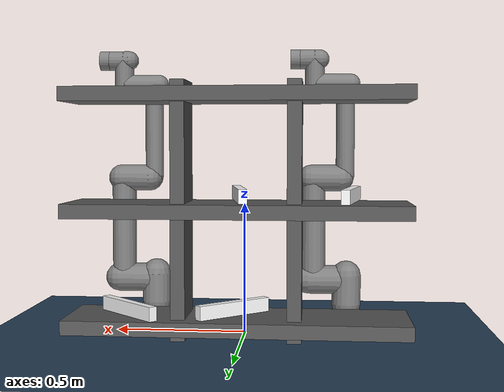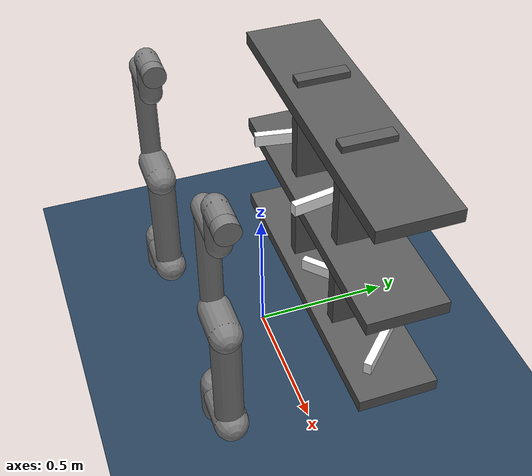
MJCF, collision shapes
<mujoco model="ur5e scene">
  <!--include file="ur5e.xml"/-->
  <include file="ur5e_two.xml"/>
  <include file="objs_four.xml"/>

  <statistic center="0.3 0 0.4" extent="0.8"/>

  <visual>
    <headlight diffuse="0.6 0.6 0.6" ambient="0.1 0.1 0.1" specular="0 0 0"/>
    <rgba haze="0.15 0.25 0.35 1"/>
    <global azimuth="120" elevation="-20"/>
  </visual>

  <asset>
    <texture type="skybox" builtin="gradient" rgb1="0.3 0.5 0.7" rgb2="0 0 0" width="512" height="3072"/>
    <texture type="2d" name="groundplane" builtin="checker" mark="edge" rgb1="0.2 0.3 0.4" rgb2="0.1 0.2 0.3"
      markrgb="0.8 0.8 0.8" width="300" height="300"/>
    <material name="groundplane" texture="groundplane" texuniform="true" texrepeat="5 5" reflectance="0.2"/>
    <material name="gray" rgba="0.35 0.35 0.35 0.7"/>
  </asset>

  <worldbody>
    <light pos="0 0 1.5" dir="0 0 -1" directional="true"/>
    <geom name="floor" size="0 0 0.05" type="plane" material="groundplane"/>

    <body name="shelf_base" pos="0.0 0.3 0.1" quat="1 0 0 0">
      <inertial pos="0 0 0" mass="1" diaginertia="0.01 0.01 0.01"/>
       <geom type="box" size="0.6 0.15 0.025" material="gray"/>

      <body name="divider" pos="0.2 0.0 0.4" quat="1 0 0 0">
        <inertial pos="0 0 0" mass="1" diaginertia="0.01 0.01 0.01"/>
        <geom type="box" size="0.025 0.1 0.45" material="gray"/>
      </body>
      <body name="divider2" pos="-0.2 0.0 0.4" quat="1 0 0 0">
        <inertial pos="0 0 0" mass="1" diaginertia="0.01 0.01 0.01"/>
        <geom type="box" size="0.025 0.1 0.45" material="gray"/>
      </body>
      <body name="level1" pos="0.0 0.0 0.4" quat="1 0 0 0">
        <inertial pos="0 0 0" mass="1" diaginertia="0.01 0.01 0.01"/>
        <geom type="box" size="0.6 0.15 0.025" material="gray"/>
      </body>
      <body name="level2" pos="0.0 0.0 0.8" quat="1 0 0 0">
        <inertial pos="0 0 0" mass="1" diaginertia="0.01 0.01 0.01"/>
        <geom type="box" size="0.6 0.15 0.025" material="gray"/>
      </body>
    </body>
  </worldbody>
</mujoco>

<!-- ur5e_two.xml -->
<mujoco model="ur5e">
  <compiler angle="radian" meshdir="ur5e_assets" autolimits="true" />

  <option integrator="implicitfast" />

  <default>
    <default class="ur5e">
      <material specular="0.5" shininess="0.25" />
      <joint axis="0 1 0" range="-6.28319 6.28319" armature="0.1" />
      <general gaintype="fixed" biastype="affine" ctrlrange="-6.2831 6.2831" gainprm="2000" biasprm="0 -2000 -400" forcerange="-150 150" />
      <default class="size3">
        <default class="size3_limited">
          <joint range="-3.1415 3.1415" />
          <general ctrlrange="-3.1415 3.1415" />
        </default>
      </default>
      <default class="size1">
        <general gainprm="500" biasprm="0 -500 -100" forcerange="-28 28" />
      </default>
      <default class="visual">
        <geom type="mesh" contype="0" conaffinity="0" group="2" />
      </default>
      <default class="collision">
        <geom type="capsule" group="3" />
        <default class="eef_collision">
          <geom type="cylinder" />
        </default>
      </default>
      <site size="0.001" rgba="0.5 0.5 0.5 0.3" group="4" />
    </default>
  </default>

  <asset>
    <material class="ur5e" name="black" rgba="0.033 0.033 0.033 1" />
    <material class="ur5e" name="jointgray" rgba="0.278 0.278 0.278 1" />
    <material class="ur5e" name="linkgray" rgba="0.82 0.82 0.82 1" />
    <material class="ur5e" name="urblue" rgba="0.49 0.678 0.8 1" />

    <mesh file="base_0.obj" />
    <mesh file="base_1.obj" />
    <mesh file="shoulder_0.obj" />
    <mesh file="shoulder_1.obj" />
    <mesh file="shoulder_2.obj" />
    <mesh file="upperarm_0.obj" />
    <mesh file="upperarm_1.obj" />
    <mesh file="upperarm_2.obj" />
    <mesh file="upperarm_3.obj" />
    <mesh file="forearm_0.obj" />
    <mesh file="forearm_1.obj" />
    <mesh file="forearm_2.obj" />
    <mesh file="forearm_3.obj" />
    <mesh file="wrist1_0.obj" />
    <mesh file="wrist1_1.obj" />
    <mesh file="wrist1_2.obj" />
    <mesh file="wrist2_0.obj" />
    <mesh file="wrist2_1.obj" />
    <mesh file="wrist2_2.obj" />
    <mesh file="wrist3.obj" />
  </asset>

  <worldbody>
    <light name="spotlight" mode="targetbodycom" target="wrist_2_link" pos="0 -1 2" />
    <body name="base" pos="-0.4 -0.3 0.0" quat="1.0 0.0 0.0 1.0" childclass="ur5e">
      <inertial mass="4.0" pos="0 0 0" diaginertia="0.00443333156 0.00443333156 0.0072" />
      <geom mesh="base_0" material="black" class="visual" />
      <geom mesh="base_1" material="jointgray" class="visual" />
      <body name="shoulder_link" pos="0 0 0.163" quat="0 0 0 1">
        <inertial mass="3.7" pos="0 0 0" diaginertia="0.0102675 0.0102675 0.00666" />
        <joint name="shoulder_pan_joint" class="size3" axis="0 0 1" />
        <geom mesh="shoulder_0" material="urblue" class="visual" />
        <geom mesh="shoulder_1" material="black" class="visual" />
        <geom mesh="shoulder_2" material="jointgray" class="visual" />
        <geom class="collision" size="0.06 0.06" pos="0 0 -0.04" />
        <body name="upper_arm_link" pos="0 0.138 0" quat="1 0 0 0">
          <inertial mass="8.393" pos="0 0 0.2125" diaginertia="0.133886 0.133886 0.0151074" />
          <joint name="shoulder_lift_joint" class="size3" />
          <geom mesh="upperarm_0" material="linkgray" class="visual" />
          <geom mesh="upperarm_1" material="black" class="visual" />
          <geom mesh="upperarm_2" material="jointgray" class="visual" />
          <geom mesh="upperarm_3" material="urblue" class="visual" />
          <geom class="collision" pos="0 -0.04 0" quat="1 1 0 0" size="0.06 0.06" />
          <geom class="collision" size="0.05 0.2" pos="0 0 0.2" />
          <body name="forearm_link" pos="0 -0.131 0.425">
            <inertial mass="2.275" pos="0 0 0.196" diaginertia="0.0311796 0.0311796 0.004095" />
            <joint name="elbow_joint" class="size3_limited" />
            <geom mesh="forearm_0" material="urblue" class="visual" />
            <geom mesh="forearm_1" material="linkgray" class="visual" />
            <geom mesh="forearm_2" material="black" class="visual" />
            <geom mesh="forearm_3" material="jointgray" class="visual" />
            <geom class="collision" pos="0 0.08 0" quat="1 1 0 0" size="0.055 0.06" />
            <geom class="collision" size="0.038 0.19" pos="0 0 0.2" />
            <body name="wrist_1_link" pos="0 0 0.392" quat="1 0 0 0">
              <inertial mass="1.219" pos="0 0.127 0" diaginertia="0.0025599 0.0025599 0.0021942" />
              <joint name="wrist_1_joint" class="size1" />
              <geom mesh="wrist1_0" material="black" class="visual" />
              <geom mesh="wrist1_1" material="urblue" class="visual" />
              <geom mesh="wrist1_2" material="jointgray" class="visual" />
              <geom class="collision" pos="0 0.05 0" quat="1 1 0 0" size="0.04 0.07" />
              <body name="wrist_2_link" pos="0 0.127 0">
                <inertial mass="1.219" pos="0 0 0.1" diaginertia="0.0025599 0.0025599 0.0021942" />
                <joint name="wrist_2_joint" axis="0 0 1" class="size1" />
                <geom mesh="wrist2_0" material="black" class="visual" />
                <geom mesh="wrist2_1" material="urblue" class="visual" />
                <geom mesh="wrist2_2" material="jointgray" class="visual" />
                <geom class="collision" size="0.04 0.06" pos="0 0 0.04" />
                <geom class="collision" pos="0 0.02 0.1" quat="1 1 0 0" size="0.04 0.04" />
                <body name="wrist_3_link" pos="0 0 0.1">
                  <inertial mass="0.1889" pos="0 0.0771683 0" quat="1 0 0 1" diaginertia="0.000132134 9.90863e-05 9.90863e-05" />
                  <joint name="wrist_3_joint" class="size1" />
                  <geom material="linkgray" mesh="wrist3" class="visual" />
                  <geom class="eef_collision" pos="0 0.08 0" quat="1 1 0 0" size="0.04 0.02" />
                  <site name="attachment_site" pos="0 0.1 0" quat="-1 1 0 0" />
                </body>
              </body>
            </body>
          </body>
        </body>
      </body>
    </body>

    <body name="base_1" pos="0.4 -0.3 0.0" quat="1.0 0.0 0.0 1.0" childclass="ur5e">
      <inertial mass="4.0" pos="0 0 0" diaginertia="0.00443333156 0.00443333156 0.0072" />
      <geom mesh="base_0" material="black" class="visual" />
      <geom mesh="base_1" material="jointgray" class="visual" />
      <body name="shoulder_link_1" pos="0 0 0.163" quat="0 0 0 1">
        <inertial mass="3.7" pos="0 0 0" diaginertia="0.0102675 0.0102675 0.00666" />
        <joint name="shoulder_pan_joint_1" class="size3" axis="0 0 1" />
        <geom mesh="shoulder_0" material="urblue" class="visual" />
        <geom mesh="shoulder_1" material="black" class="visual" />
        <geom mesh="shoulder_2" material="jointgray" class="visual" />
        <geom class="collision" size="0.06 0.06" pos="0 0 -0.04" />
        <body name="upper_arm_link_1" pos="0 0.138 0" quat="1 0 0 0">
          <inertial mass="8.393" pos="0 0 0.2125" diaginertia="0.133886 0.133886 0.0151074" />
          <joint name="shoulder_lift_joint_1" class="size3" />
          <geom mesh="upperarm_0" material="linkgray" class="visual" />
          <geom mesh="upperarm_1" material="black" class="visual" />
          <geom mesh="upperarm_2" material="jointgray" class="visual" />
          <geom mesh="upperarm_3" material="urblue" class="visual" />
          <geom class="collision" pos="0 -0.04 0" quat="1 1 0 0" size="0.06 0.06" />
          <geom class="collision" size="0.05 0.2" pos="0 0 0.2" />
          <body name="forearm_link_1" pos="0 -0.131 0.425">
            <inertial mass="2.275" pos="0 0 0.196" diaginertia="0.0311796 0.0311796 0.004095" />
            <joint name="elbow_joint_1" class="size3_limited" />
            <geom mesh="forearm_0" material="urblue" class="visual" />
            <geom mesh="forearm_1" material="linkgray" class="visual" />
            <geom mesh="forearm_2" material="black" class="visual" />
            <geom mesh="forearm_3" material="jointgray" class="visual" />
            <geom class="collision" pos="0 0.08 0" quat="1 1 0 0" size="0.055 0.06" />
            <geom class="collision" size="0.038 0.19" pos="0 0 0.2" />
            <body name="wrist_1_link_1" pos="0 0 0.392" quat="1 0 0 0">
              <inertial mass="1.219" pos="0 0.127 0" diaginertia="0.0025599 0.0025599 0.0021942" />
              <joint name="wrist_1_joint_1" class="size1" />
              <geom mesh="wrist1_0" material="black" class="visual" />
              <geom mesh="wrist1_1" material="urblue" class="visual" />
              <geom mesh="wrist1_2" material="jointgray" class="visual" />
              <geom class="collision" pos="0 0.05 0" quat="1 1 0 0" size="0.04 0.07" />
              <body name="wrist_2_link_1" pos="0 0.127 0">
                <inertial mass="1.219" pos="0 0 0.1" diaginertia="0.0025599 0.0025599 0.0021942" />
                <joint name="wrist_2_joint_1" axis="0 0 1" class="size1" />
                <geom mesh="wrist2_0" material="black" class="visual" />
                <geom mesh="wrist2_1" material="urblue" class="visual" />
                <geom mesh="wrist2_2" material="jointgray" class="visual" />
                <geom class="collision" size="0.04 0.06" pos="0 0 0.04" />
                <geom class="collision" pos="0 0.02 0.1" quat="1 1 0 0" size="0.04 0.04" />
                <body name="wrist_3_link_1" pos="0 0 0.1">
                  <inertial mass="0.1889" pos="0 0.0771683 0" quat="1 0 0 1" diaginertia="0.000132134 9.90863e-05 9.90863e-05" />
                  <joint name="wrist_3_joint_1" class="size1" />
                  <geom material="linkgray" mesh="wrist3" class="visual" />
                  <geom class="eef_collision" pos="0 0.08 0" quat="1 1 0 0" size="0.04 0.02" />
                  <site name="attachment_site_1" pos="0 0.1 0" quat="-1 1 0 0" />
                </body>
              </body>
            </body>
          </body>
        </body>
      </body>
    </body>
  </worldbody>

  <actuator>
    <general class="size3" name="shoulder_pan" joint="shoulder_pan_joint" />
    <general class="size3" name="shoulder_lift" joint="shoulder_lift_joint" />
    <general class="size3_limited" name="elbow" joint="elbow_joint" />
    <general class="size1" name="wrist_1" joint="wrist_1_joint" />
    <general class="size1" name="wrist_2" joint="wrist_2_joint" />
    <general class="size1" name="wrist_3" joint="wrist_3_joint" />
    <general class="size3" name="shoulder_pan_1" joint="shoulder_pan_joint_1" />
    <general class="size3" name="shoulder_lift_1" joint="shoulder_lift_joint_1" />
    <general class="size3_limited" name="elbow_1" joint="elbow_joint_1" />
    <general class="size1" name="wrist_1_1" joint="wrist_1_joint_1" />
    <general class="size1" name="wrist_2_1" joint="wrist_2_joint_1" />
    <general class="size1" name="wrist_3_1" joint="wrist_3_joint_1" />
  </actuator>

</mujoco>

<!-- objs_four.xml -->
<mujoco>
  <compiler angle="radian" />

  <visual>
    <headlight ambient="0.1 0.1 0.1" />
  </visual>

  <asset>
    <material name="white" rgba="1 1 1 1" />
    <material name="goal" rgba="0 0 0 0.3" />
  </asset>

  <option gravity="0 0 -9.8" />
  <worldbody>
    <body name="obj1" pos="0.384044719500927 0.3308102153746691 0.15100000000000002" quat="0.3840822831391089 -0.0 -0.0 -0.9232988680696242">
      <joint type="free" />
      <inertial pos="0 0 0" mass="1" diaginertia="0.01 0.01 0.01" />
      <geom type="box" size="0.015 0.15 0.025" material="white" />

    </body>

    <body name="obj2" pos="-0.3962268815398693 0.2638282630023196 0.551" quat="0.9966513769182127 -0.0 -0.0 -0.08176816548651868">
      <joint type="free" />
      <inertial pos="0 0 0" mass="1" diaginertia="0.01 0.01 0.01" />
      <geom type="box" size="0.015 0.15 0.025" material="white" />

    </body>

    <body name="obj3" pos="0.01674419724197708 0.3060225231116519 0.15100000000000002" quat="0.4044750638191502 0.0 0.0 0.9145490269791414">
      <joint type="free" />
      <inertial pos="0 0 0" mass="1" diaginertia="0.01 0.01 0.01" />
      <geom type="box" size="0.015 0.15 0.025" material="white" />

    </body>

    <body name="obj4" pos="-0.0016177694542610956 0.2607901687810228 0.551" quat="0.08132772488584517 -0.0 -0.0 -0.9966874139693409">
      <joint type="free" />
      <inertial pos="0 0 0" mass="1" diaginertia="0.01 0.01 0.01" />
      <geom type="box" size="0.015 0.15 0.025" material="white" />

    </body>

  </worldbody>
</mujoco>
